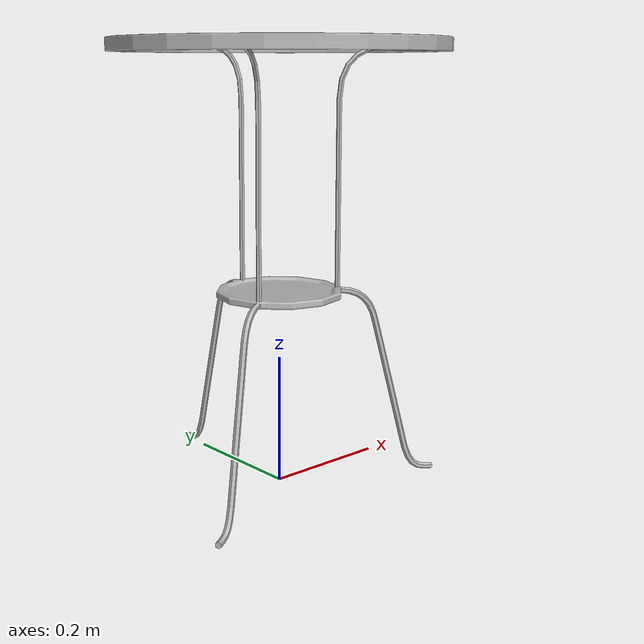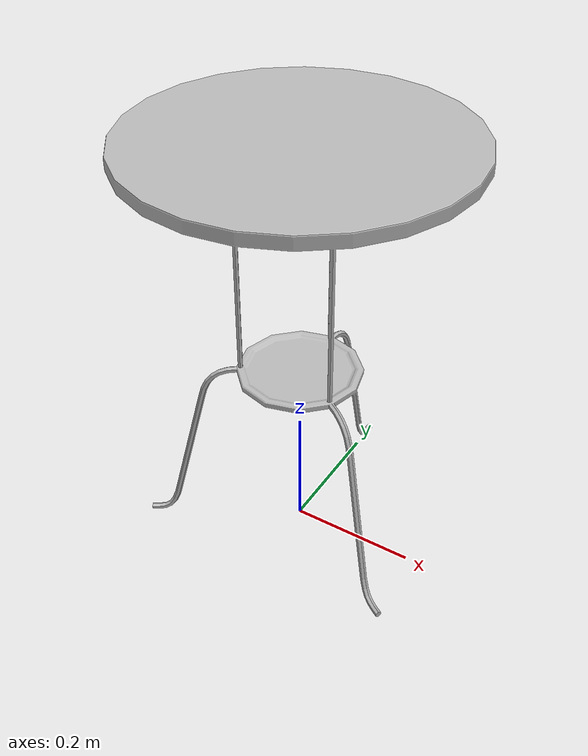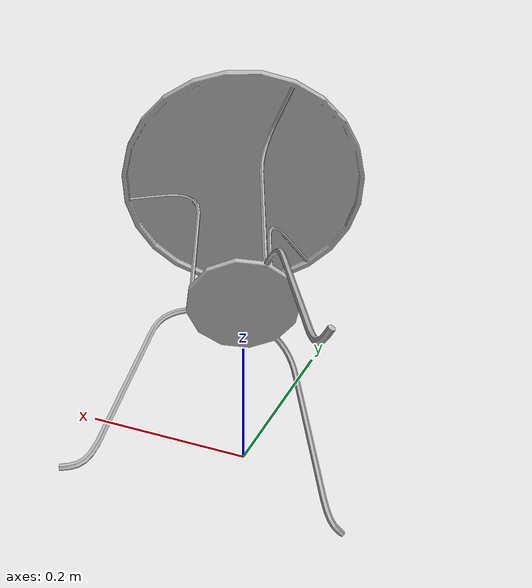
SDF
<?xml version='1.0'?>
<sdf version='1.4'>
  <model name='s__435'>
    <pose>0 0 0 0 0 0</pose>
    <static>true</static>
    <link name='link'>
      <collision name='collision'>
        <pose>0 0 0 0 0 0</pose>
        <geometry>
          <box>
            <size>0.5 0.5 2</size>
          </box>
        </geometry>
      </collision>
      <visual name='visual'>
        <pose>0 0 0 0 0 0</pose>
        <geometry>
          <mesh><uri>model://s__435/s__435.dae</uri></mesh>
        </geometry>
      </visual>
    </link>
  </model>
</sdf>
